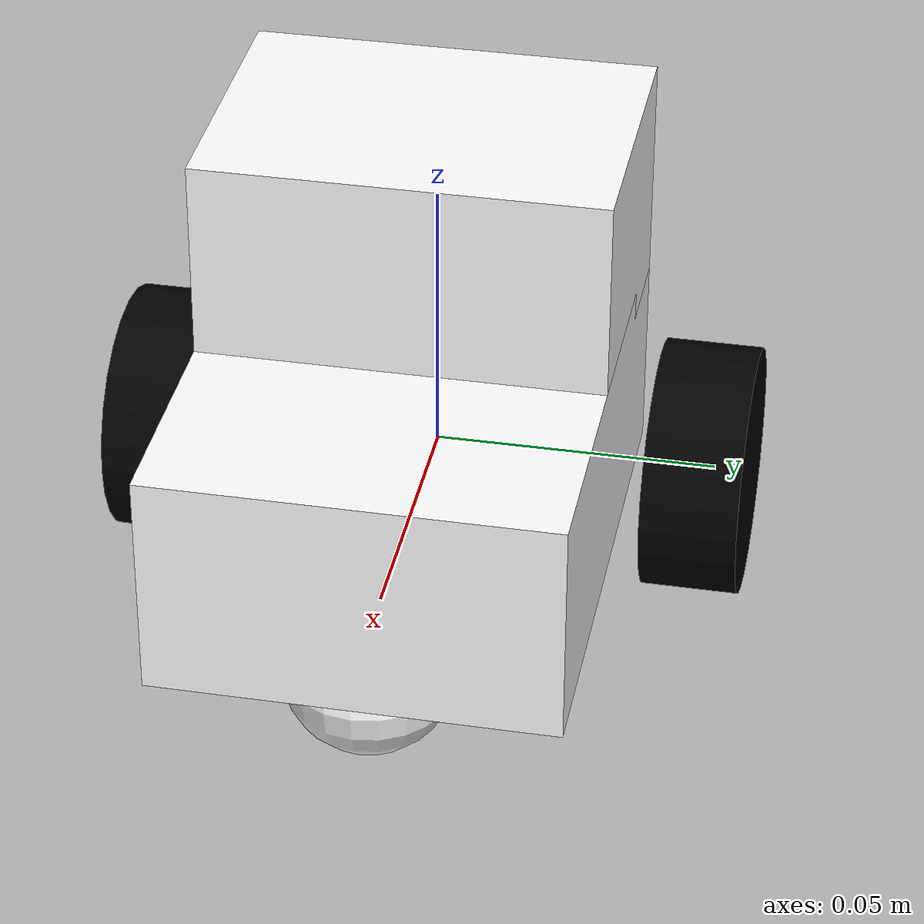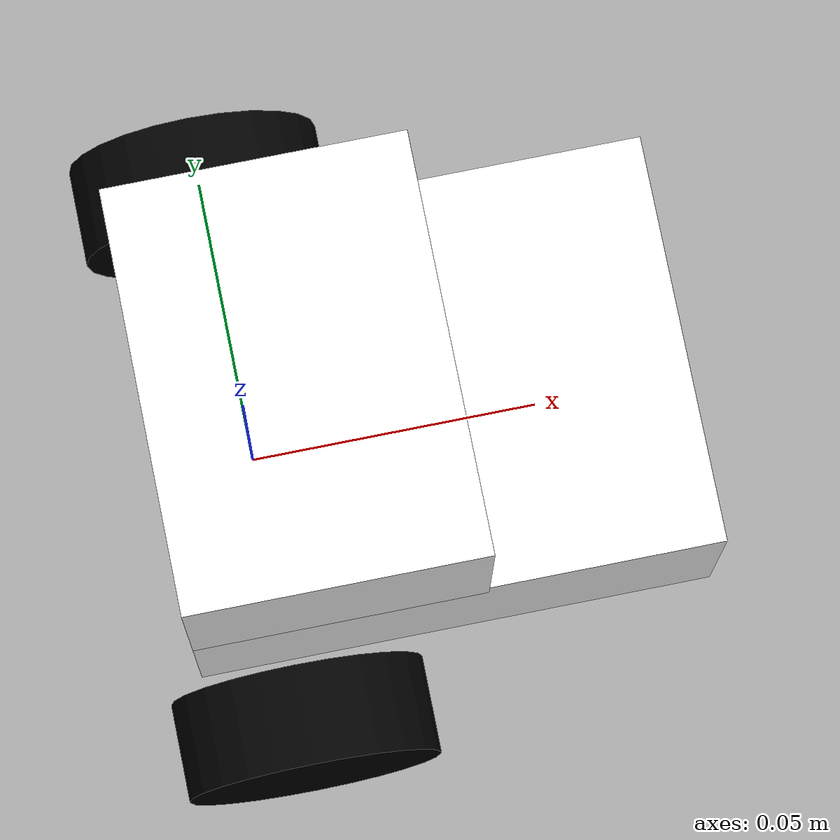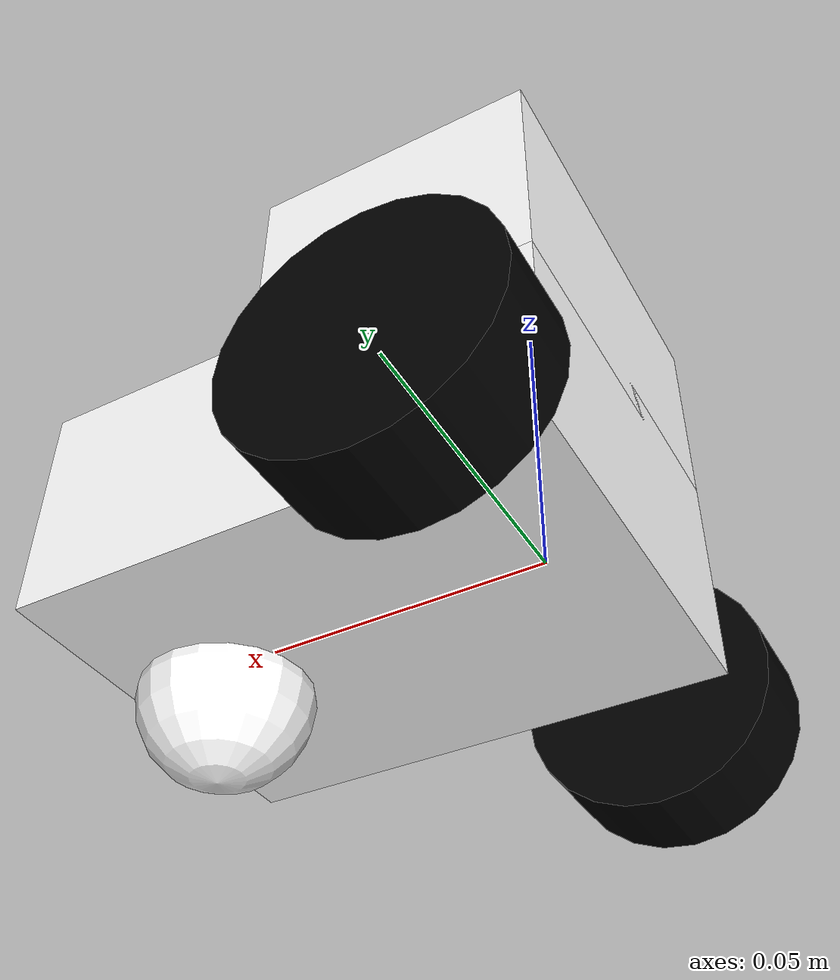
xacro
<?xml version="1.0"?>
<robot xmlns:xacro="http://www.ros.org/wiki/xacro"  >

    <xacro:include filename="inertial_macros.xacro"/>

    <xacro:property name="chassis_length" value="0.090"/>
    <xacro:property name="chassis_width" value="0.070"/>
    <xacro:property name="chassis_height" value="0.040"/>
    <xacro:property name="chassis_mass" value="1.0"/>
    <xacro:property name="wheel_radius" value="0.022"/>
    <xacro:property name="wheel_thickness" value="0.017"/>
    <xacro:property name="wheel_mass" value="0.3"/>
    <xacro:property name="wheel_offset_x" value="0.016"/>
    <xacro:property name="wheel_offset_y" value="0.048"/>
    <xacro:property name="wheel_offset_z" value="0.005"/>
    <xacro:property name="caster_wheel_radius" value="0.015"/>
    <xacro:property name="caster_wheel_mass" value="0.2"/>
    <xacro:property name="caster_wheel_offset_x" value="0.075"/>
    <xacro:property name="caster_wheel_offset_z" value="${wheel_offset_z - wheel_radius + caster_wheel_radius}"/>

    <material name="white">
        <color rgba="1 1 1 1" />
    </material>

    <material name="orange">
        <color rgba="1 0.3 0.1 1"/>
    </material>

    <material name="blue">
        <color rgba="0.2 0.2 1 1"/>
    </material>

    <material name="black">
        <color rgba="0 0 0 1"/>
    </material>

    <material name="red">
        <color rgba="1 0 0 1"/>
    </material>

    <!-- BASE LINK -->

    <link name="base_link">

    </link>

    <!-- BASE_FOOTPRINT LINK -->

    <joint name="base_footprint_joint" type="fixed">
        <parent link="base_link"/>
        <child link="base_footprint"/>
        <origin xyz="0 0 0" rpy="0 0 0"/>
    </joint>

    <link name="base_footprint">
    </link>

    <!-- CHASSIS LINK -->

    <joint name="chassis_joint" type="fixed">
        <parent link="base_link"/>
        <child link="chassis"/>
        <origin xyz="${-wheel_offset_x} 0 ${-wheel_offset_z}"/>
    </joint>

    <link name="chassis">
        <visual>
            <origin xyz="${chassis_length/2} 0 ${chassis_height/2}"/>
            <geometry>
                <box size="${chassis_length} ${chassis_width} ${chassis_height}"/>
            </geometry>
            <material name="white"/>
        </visual>
        <collision>
            <origin xyz="${chassis_length/2} 0 ${chassis_height/2}"/>
            <geometry>
                <box size="${chassis_length} ${chassis_width} ${chassis_height}"/>
            </geometry>
        </collision>
        <xacro:inertial_box mass="0.5" x="${chassis_length}" y="${chassis_width}" z="${chassis_height}">
            <origin xyz="${chassis_length/2} 0 ${chassis_height/2}" rpy="0 0 0"/>
        </xacro:inertial_box>

    </link>
    <gazebo reference="chassis">
        <material>Gazebo/White</material>
    </gazebo>

    <!-- CHASSIS TOP -->

    <joint name="chassis_top_joint" type="fixed">
        <parent link="base_link"/>
        <child link="chassis_top"/>
        <origin xyz="${-wheel_offset_x} 0 ${chassis_height-wheel_offset_z}"/>
    </joint>
    <link name="chassis_top">
        <visual>
            <origin xyz="0.025 0 ${(chassis_height/2)-wheel_offset_z}"/>
            <geometry>
                <box size="0.05 ${chassis_width} ${chassis_height}"/>
            </geometry>
            <material name="white"/>
        </visual>
        <collision>
            <origin xyz="0.025 0 ${(chassis_height/2)-wheel_offset_z}"/>
            <geometry>
                <box size="0.05 ${chassis_width} ${chassis_height}"/>
            </geometry>
        </collision>
        <xacro:inertial_box mass="0.03" x="${chassis_length}" y="${chassis_width}" z="${chassis_height}">
            <origin xyz="0.025 0 ${(chassis_height/2)-wheel_offset_z}" rpy="0 0 0"/>
        </xacro:inertial_box>
    </link>
    <gazebo reference="chassis_top">
        <material>Gazebo/White</material>
    </gazebo>

    <!-- LEFT WHEEL LINK -->

    <joint name="left_wheel_joint" type="continuous">
        <parent link="base_link"/>
        <child link="left_wheel"/>
        <origin xyz="0 ${wheel_offset_y} 0" rpy="-${pi/2} 0 0" />
        <axis xyz="0 0 1"/>
    </joint>

    <link name="left_wheel">
        <visual>
            <geometry>
                <cylinder radius="${wheel_radius}" length="${wheel_thickness}"/>
            </geometry>
            <material name="black"/>
        </visual>
        <collision>
            <geometry>
                <sphere radius="${wheel_radius}"/>
            </geometry>
        </collision>
        <xacro:inertial_cylinder mass="${wheel_mass}" length="${wheel_thickness}" radius="${wheel_radius}">
            <origin xyz="0 0 0" rpy="0 0 0"/>
        </xacro:inertial_cylinder>

    </link>

    <gazebo reference="left_wheel">
        <material>Gazebo/Black</material>
    </gazebo>

    <!-- RIGHT WHEEL LINK -->

    <joint name="right_wheel_joint" type="continuous">
        <parent link="base_link"/>
        <child link="right_wheel"/>
        <origin xyz="0 ${-wheel_offset_y} 0" rpy="${pi/2} 0 0" />
        <axis xyz="0 0 -1"/>
    </joint>

    <link name="right_wheel">
        <visual>
            <geometry>
                <cylinder radius="${wheel_radius}" length="${wheel_thickness}"/>
            </geometry>
            <material name="black"/>
        </visual>
        <collision>
            <geometry>
                <sphere radius="${wheel_radius}"/>
            </geometry>
        </collision>
        <xacro:inertial_cylinder mass="${wheel_mass}" length="${wheel_thickness}" radius="${wheel_radius}">
            <origin xyz="0 0 0" rpy="0 0 0"/>
        </xacro:inertial_cylinder>

    </link>

    <gazebo reference="right_wheel">
        <material>Gazebo/Black</material>
    </gazebo>

    <!-- CASTER WHEEL LINK -->

    <joint name="caster_wheel_joint" type="fixed">
        <parent link="chassis"/>
        <child link="caster_wheel"/>
        <origin xyz="${caster_wheel_offset_x} 0 ${caster_wheel_offset_z}"/>
    </joint>

    <link name="caster_wheel">
        <visual>
            <geometry>
                <sphere radius="${caster_wheel_radius}"/>
            </geometry>
            <material name="white"/>
        </visual>
        <collision>
            <geometry>
                <sphere radius="${caster_wheel_radius}"/>
            </geometry>
        </collision>
        <xacro:inertial_sphere mass="${caster_wheel_mass}" radius="${caster_wheel_radius}">
            <origin xyz="0 0 0" rpy="0 0 0"/>
        </xacro:inertial_sphere>

    </link>

    <gazebo reference="caster_wheel">
        <material>Gazebo/Black</material>
        <mu1 value="0.001"/>
        <mu2 value="0.001"/>
    </gazebo>

</robot>
